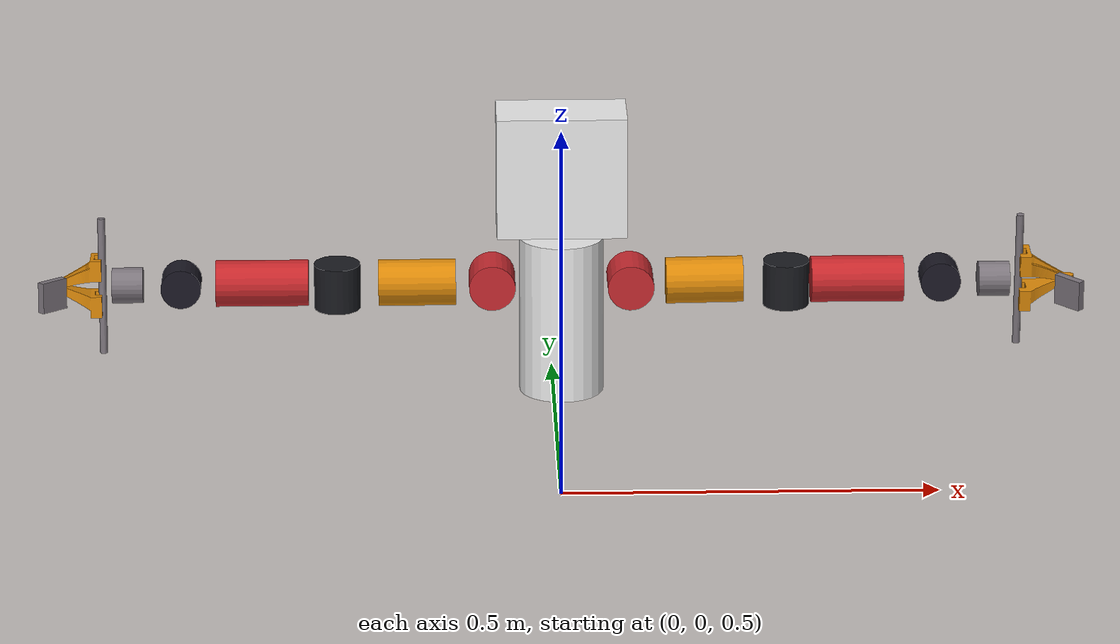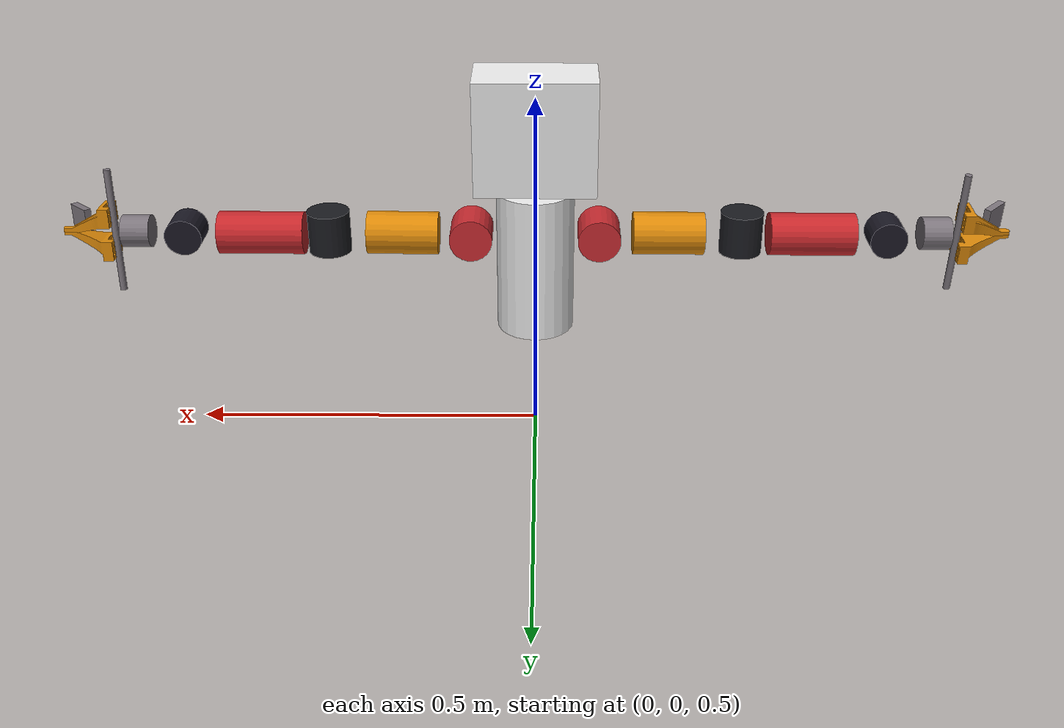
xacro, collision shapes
<?xml version="1.0"?>
<robot xmlns:xacro="http://www.ros.org/wiki/xacro" name="lite_000_asm">
    <xacro:arg name="initial_positions_file" default="initial_positions.yaml" />

    <!-- Import lite_000_asm urdf file -->
    <xacro:include filename="$(find lite_moveit2)/urdf/lite.urdf" />

    <!-- Import control_xacro -->
    <xacro:include filename="lite_000_asm.ros2_control.xacro" />

    <xacro:lite_000_asm_ros2_control name="FakeSystem" initial_positions_file="$(arg initial_positions_file)"/>

</robot>

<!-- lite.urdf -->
<!-- |    This document was autogenerated by xacro from /home/stvli/Desktop/where_is_my_key/lite_ros2/lite_urdf/urdf/lite.urdf.xacro | -->
<!-- |    EDITING THIS FILE BY HAND IS NOT RECOMMENDED                                 | -->
<robot name="lite_000_asm">
  <link name="right_wrist_yaw_motor_link">
    <inertial>
      <origin rpy="0 0 0" xyz="-0.0001343 -0.0214752 -0.0000049"/>
      <mass value="0.0000254"/>
      <inertia ixx="0" ixy="0" ixz="0" iyy="0" iyz="0" izz="0"/>
    </inertial>
    <visual>
      <origin rpy="0 0 0" xyz="0 0 0"/>
      <geometry>
        <mesh filename="package://lite_moveit2/meshes/right_wrist_yaw_motor_link_visual.stl"/>
      </geometry>
      <material name="lite_wrist_yaw_motor">
        <color rgba="0.76470588 0.15294118 0.16862745 1.00000000"/>
      </material>
    </visual>
    <collision>
      <origin rpy="1.570796327 -3.673205103e-06 -7.3e-06" xyz="-1.221561089e-07 -0.033256 0"/>
      <geometry>
        <cylinder length="0.12" radius="0.03"/>
      </geometry>
    </collision>
  </link>
  <link name="left_wrist_yaw_motor_link">
    <inertial>
      <origin rpy="0 0 0" xyz="-0.0001343 -0.0214752 -0.0000049"/>
      <mass value="0.0000254"/>
      <inertia ixx="0" ixy="0" ixz="0" iyy="0" iyz="0" izz="0"/>
    </inertial>
    <visual>
      <origin rpy="0 0 0" xyz="0 0 0"/>
      <geometry>
        <mesh filename="package://lite_moveit2/meshes/left_wrist_yaw_motor_link_visual.stl"/>
      </geometry>
      <material name="lite_wrist_yaw_motor">
        <color rgba="0.76470588 0.15294118 0.16862745 1.00000000"/>
      </material>
    </visual>
    <collision>
      <origin rpy="2.509931214 -1.570791833 2.202461439" xyz="1.093138492e-07 -0.0297598 0"/>
      <geometry>
        <cylinder length="0.12" radius="0.03"/>
      </geometry>
    </collision>
  </link>
  <link name="left_elbow_pitch_link">
    <inertial>
      <origin rpy="0 0 0.86488" xyz="-0.0146726 -0.0332905 -0.013722"/>
      <mass value="0.0000964"/>
      <inertia ixx="0.0000001" ixy="0" ixz="0" iyy="0.0000001" iyz="0" izz="0.0000001"/>
    </inertial>
    <visual>
      <origin rpy="0 0 0" xyz="0 0 0"/>
      <geometry>
        <mesh filename="package://lite_moveit2/meshes/left_elbow_pitch_link_visual.stl"/>
      </geometry>
      <material name="lite_elbow_pitch">
        <color rgba="0.94117647 0.96078431 0.97647059 1.00000000"/>
      </material>
    </visual>
  </link>
  <link name="left_shoulder_pitch_link">
    <inertial>
      <origin rpy="-0.299414 0 0" xyz="-0.017422 0.0100505 0.0023346"/>
      <mass value="0.0000497"/>
      <inertia ixx="0" ixy="0" ixz="0" iyy="0" iyz="0" izz="0"/>
    </inertial>
    <visual>
      <origin rpy="0 0 0" xyz="0 0 0"/>
      <geometry>
        <mesh filename="package://lite_moveit2/meshes/left_shoulder_pitch_link_visual.stl"/>
      </geometry>
      <material name="lite_shoulder_pitch">
        <color rgba="0.77254902 0.16470588 0.18823529 1.00000000"/>
      </material>
    </visual>
    <collision>
      <origin rpy="1.25 0 0" xyz="-0.0408173 -0.0001475 -0.0003191"/>
      <geometry>
        <cylinder length="0.06" radius="0.03"/>
      </geometry>
    </collision>
  </link>
  <link name="left_shoulder_roll_link">
    <inertial>
      <origin rpy="0 0.314302 0" xyz="0.0402802 -0.01516 -0.0119022"/>
      <mass value="0.0000948"/>
      <inertia ixx="0" ixy="0" ixz="0" iyy="0.0000001" iyz="0" izz="0.0000001"/>
    </inertial>
    <visual>
      <origin rpy="0 0 0" xyz="0 0 0"/>
      <geometry>
        <mesh filename="package://lite_moveit2/meshes/left_shoulder_roll_link_visual.stl"/>
      </geometry>
      <material name="lite_shoulder_roll">
        <color rgba="0.84705882 0.52549020 0.03137255 1.00000000"/>
      </material>
    </visual>
    <collision>
      <origin rpy="-3.1415926 1.2415927 -3.1415926" xyz="0.0911512 -0.0269397 -0.0299579"/>
      <geometry>
        <cylinder length="0.1" radius="0.03"/>
      </geometry>
    </collision>
  </link>
  <link name="left_shoulder_yaw_link">
    <inertial>
      <origin rpy="-0.43982 0 0" xyz="-0.0338829 0.0029572 0.0055402"/>
      <mass value="0.0001271"/>
      <inertia ixx="0.0000001" ixy="0" ixz="0" iyy="0.0000001" iyz="0" izz="0.0000001"/>
    </inertial>
    <visual>
      <origin rpy="0 0 0" xyz="0 0 0"/>
      <geometry>
        <mesh filename="package://lite_moveit2/meshes/left_shoulder_yaw_link_visual.stl"/>
      </geometry>
      <material name="lite_shoulder_yaw">
        <color rgba="0.10196078 0.10588235 0.12549020 1.00000000"/>
      </material>
    </visual>
    <collision>
      <origin rpy="-0.455 0 0" xyz="-0.0810676 0.0076647 -0.0043353"/>
      <geometry>
        <cylinder length="0.06" radius="0.03"/>
      </geometry>
    </collision>
  </link>
  <link name="left_wrist_roll_link">
    <inertial>
      <origin rpy="0 -0.414095 0" xyz="0.0068741 0.026505 -0.0140495"/>
      <mass value="0.0000165"/>
      <inertia ixx="0" ixy="0" ixz="0" iyy="0" iyz="0" izz="0"/>
    </inertial>
    <visual>
      <origin rpy="0 0 0" xyz="0 0 0"/>
      <geometry>
        <mesh filename="package://lite_moveit2/meshes/left_wrist_roll_link_visual.stl"/>
      </geometry>
      <material name="lite_wrist_roll">
        <color rgba="0.10196078 0.09411765 0.13725490 1.00000000"/>
      </material>
    </visual>
    <collision>
      <origin rpy="0 -0.414095 0" xyz="-0.0006294789133 0.0249693 -0.0004228140225"/>
      <geometry>
        <cylinder length="0.045" radius="0.026"/>
      </geometry>
    </collision>
  </link>
  <link name="left_gripper_finger_left_link">
    <inertial>
      <origin rpy="0 0 0" xyz="-0.01125 -0.0034914 0.0017499"/>
      <mass value="0.0000019"/>
      <inertia ixx="0" ixy="0" ixz="0" iyy="0" iyz="0" izz="0"/>
    </inertial>
    <visual>
      <origin rpy="0 0 0" xyz="0 0 0"/>
      <geometry>
        <mesh filename="package://lite_moveit2/meshes/left_gripper_finger_left_link_visual.stl"/>
      </geometry>
      <material name="lite_gripper_finger_black">
        <color rgba="0.84705882 0.52549020 0.03137255 1.00000000"/>
      </material>
    </visual>
    <collision>
      <origin rpy="0 0 0" xyz="0 0 0"/>
      <geometry>
        <mesh filename="package://lite_moveit2/meshes/left_gripper_finger_left_link_collision.stl"/>
      </geometry>
    </collision>
  </link>
  <link name="right_gripper_finger_left_link">
    <inertial>
      <origin rpy="0 0 0" xyz="-0.01125 -0.0034914 0.0017499"/>
      <mass value="0.0000019"/>
      <inertia ixx="0" ixy="0" ixz="0" iyy="0" iyz="0" izz="0"/>
    </inertial>
    <visual>
      <origin rpy="0 0 0" xyz="0 0 0"/>
      <geometry>
        <mesh filename="package://lite_moveit2/meshes/right_gripper_finger_left_link_visual.stl"/>
      </geometry>
      <material name="lite_gripper_finger_black">
        <color rgba="0.84705882 0.52549020 0.03137255 1.00000000"/>
      </material>
    </visual>
    <collision>
      <origin rpy="0 0 0" xyz="0 0 0"/>
      <geometry>
        <mesh filename="package://lite_moveit2/meshes/right_gripper_finger_left_link_collision.stl"/>
      </geometry>
    </collision>
  </link>
  <link name="left_gripper_finger_right_link">
    <inertial>
      <origin rpy="0 0 0" xyz="0.01125 -0.0034914 0.0017499"/>
      <mass value="0.0000019"/>
      <inertia ixx="0" ixy="0" ixz="0" iyy="0" iyz="0" izz="0"/>
    </inertial>
    <visual>
      <origin rpy="0 0 0" xyz="0 0 0"/>
      <geometry>
        <mesh filename="package://lite_moveit2/meshes/left_gripper_finger_right_link_visual.stl"/>
      </geometry>
      <material name="lite_gripper_finger_black">
        <color rgba="0.84705882 0.52549020 0.03137255 1.00000000"/>
      </material>
    </visual>
    <collision>
      <origin rpy="0 0 0" xyz="0 0 0"/>
      <geometry>
        <mesh filename="package://lite_moveit2/meshes/left_gripper_finger_right_link_collision.stl"/>
      </geometry>
    </collision>
  </link>
  <link name="right_gripper_finger_right_link">
    <inertial>
      <origin rpy="0 0 0" xyz="0.01125 -0.0034914 0.0017499"/>
      <mass value="0.0000019"/>
      <inertia ixx="0" ixy="0" ixz="0" iyy="0" iyz="0" izz="0"/>
    </inertial>
    <visual>
      <origin rpy="0 0 0" xyz="0 0 0"/>
      <geometry>
        <mesh filename="package://lite_moveit2/meshes/right_gripper_finger_right_link_visual.stl"/>
      </geometry>
      <material name="lite_gripper_finger_black">
        <color rgba="0.84705882 0.52549020 0.03137255 1.00000000"/>
      </material>
    </visual>
    <collision>
      <origin rpy="0 0 0" xyz="0 0 0"/>
      <geometry>
        <mesh filename="package://lite_moveit2/meshes/right_gripper_finger_right_link_collision.stl"/>
      </geometry>
    </collision>
  </link>
  <link name="right_elbow_pitch_link">
    <inertial>
      <origin rpy="0 0 -0.0471294" xyz="0.0340985 -0.0119819 -0.0129345"/>
      <mass value="0.0000971"/>
      <inertia ixx="0.0000001" ixy="0" ixz="0" iyy="0.0000001" iyz="0" izz="0.0000001"/>
    </inertial>
    <visual>
      <origin rpy="0 0 0" xyz="0 0 0"/>
      <geometry>
        <mesh filename="package://lite_moveit2/meshes/right_elbow_pitch_link_visual.stl"/>
      </geometry>
      <material name="lite_elbow_pitch">
        <color rgba="0.94117647 0.96078431 0.97647059 1.00000000"/>
      </material>
    </visual>
  </link>
  <link name="right_shoulder_pitch_link">
    <inertial>
      <origin rpy="0.25946 0 0" xyz="0.017422 0.0072834 0.0073085"/>
      <mass value="0.0000497"/>
      <inertia ixx="0" ixy="0" ixz="0" iyy="0" iyz="0" izz="0"/>
    </inertial>
    <visual>
      <origin rpy="0 0 0" xyz="0 0 0"/>
      <geometry>
        <mesh filename="package://lite_moveit2/meshes/right_shoulder_pitch_link_visual.stl"/>
      </geometry>
      <material name="lite_shoulder_pitch">
        <color rgba="0.77254902 0.16470588 0.18823529 1.00000000"/>
      </material>
    </visual>
    <collision>
      <origin rpy="-1.32 0 0" xyz="0.0408556 -0.0013229 -0.0002332"/>
      <geometry>
        <cylinder length="0.06" radius="0.03"/>
      </geometry>
    </collision>
  </link>
  <link name="right_shoulder_roll_link">
    <inertial>
      <origin rpy="0 -0.582412 0" xyz="0.0354428 -0.0143616 0.0220107"/>
      <mass value="0.0000954"/>
      <inertia ixx="0.0000001" ixy="0" ixz="0" iyy="0.0000001" iyz="0" izz="0.0000001"/>
    </inertial>
    <visual>
      <origin rpy="0 0 0" xyz="0 0 0"/>
      <geometry>
        <mesh filename="package://lite_moveit2/meshes/right_shoulder_roll_link_visual.stl"/>
      </geometry>
      <material name="lite_shoulder_roll">
        <color rgba="0.84705882 0.52549020 0.03137255 1.00000000"/>
      </material>
    </visual>
    <collision>
      <origin rpy="0 0.99 0" xyz="0.0810147 -0.0248544 0.0537949"/>
      <geometry>
        <cylinder length="0.1" radius="0.03"/>
      </geometry>
    </collision>
  </link>
  <link name="right_shoulder_yaw_link">
    <inertial>
      <origin rpy="-1.55277 0 0" xyz="0.0338839 0.0062782 -0.0002046"/>
      <mass value="0.0001271"/>
      <inertia ixx="0.0000001" ixy="0" ixz="0" iyy="0.0000001" iyz="0" izz="0.0000001"/>
    </inertial>
    <visual>
      <origin rpy="0 0 0" xyz="0 0 0"/>
      <geometry>
        <mesh filename="package://lite_moveit2/meshes/right_shoulder_yaw_link_visual.stl"/>
      </geometry>
      <material name="lite_shoulder_yaw">
        <color rgba="0.10196078 0.10588235 0.12549020 1.00000000"/>
      </material>
    </visual>
    <collision>
      <origin rpy="1.5707963 0 0" xyz="0.0799504 0 -0.0092276"/>
      <geometry>
        <cylinder length="0.06" radius="0.03"/>
      </geometry>
    </collision>
  </link>
  <link name="left_wrist_pitch_link">
    <inertial>
      <origin rpy="0 0 -0.725768" xyz="0.023173 -0.0205664 -0.0112555"/>
      <mass value="0.0000274"/>
      <inertia ixx="0" ixy="0" ixz="0" iyy="0" iyz="0" izz="0"/>
    </inertial>
    <visual>
      <origin rpy="0 0 0" xyz="0 0 0"/>
      <geometry>
        <mesh filename="package://lite_moveit2/meshes/left_wrist_pitch_link_visual.stl"/>
      </geometry>
      <material name="lite_wrist_pitch">
        <color rgba="0.47843137 0.45098039 0.47843137 1.00000000"/>
      </material>
    </visual>
    <collision>
      <origin rpy="-0.785393176 -0.06981242277 0.845026119" xyz="0.1208810353 -0.1117893004 0.02800887784"/>
      <geometry>
        <box size="0.04 0.04 0.01"/>
      </geometry>
    </collision>
    <collision>
      <origin rpy="1.500983127 -3.666126471e-06 2.415824556" xyz="0.07690913134 -0.06851299558 -0.01754819854"/>
      <geometry>
        <cylinder length="0.18" radius="0.005"/>
      </geometry>
    </collision>
    <collision>
      <origin rpy="1.5708 -0.0698132 0.845028" xyz="0.05264540883 -0.04689062756 -0.01853816177"/>
      <geometry>
        <cylinder length="0.04" radius="0.023"/>
      </geometry>
    </collision>
  </link>
  <link name="right_wrist_pitch_link">
    <inertial>
      <origin rpy="0 0 -0.393547" xyz="0.0286135 -0.0118841 -0.0112555"/>
      <mass value="0.0000274"/>
      <inertia ixx="0" ixy="0" ixz="0" iyy="0" iyz="0" izz="0"/>
    </inertial>
    <visual>
      <origin rpy="0 0 0" xyz="0 0 0"/>
      <geometry>
        <mesh filename="package://lite_moveit2/meshes/right_wrist_pitch_link_visual.stl"/>
      </geometry>
      <material name="lite_wrist_pitch">
        <color rgba="0.47843137 0.45098039 0.47843137 1.00000000"/>
      </material>
    </visual>
    <collision>
      <origin rpy="-0.7853878688 -0.06981242277 1.177248119" xyz="0.1513366084 -0.0663160654 0.02735937002"/>
      <geometry>
        <box size="0.04 0.04 0.01"/>
      </geometry>
    </collision>
    <collision>
      <origin rpy="1.500983127 -3.666126471e-06 2.748046556" xyz="0.09509964415 -0.0395609147 -0.01761512239"/>
      <geometry>
        <cylinder length="0.18" radius="0.005"/>
      </geometry>
    </collision>
    <collision>
      <origin rpy="1.5708 -0.0698132 1.17725" xyz="0.0651106442 -0.02703434655 -0.01860488611"/>
      <geometry>
        <cylinder length="0.04" radius="0.023"/>
      </geometry>
    </collision>
  </link>
  <link name="right_wrist_roll_motor_link">
    <inertial>
      <origin rpy="0 0.0743208 0" xyz="0.0006071 0.0259549 0.0117595"/>
      <mass value="0.0000121"/>
      <inertia ixx="0" ixy="0" ixz="0" iyy="0" iyz="0" izz="0"/>
    </inertial>
    <visual>
      <origin rpy="0 0 0" xyz="0 0 0"/>
      <geometry>
        <mesh filename="package://lite_moveit2/meshes/right_wrist_roll_motor_link_visual.stl"/>
      </geometry>
      <material name="lite_wrist_roll">
        <color rgba="0.10196078 0.09411765 0.13725490 1.00000000"/>
      </material>
    </visual>
    <collision>
      <origin rpy="0 0.0743208 0" xyz="0.0012916 0.0269225 -0.000746"/>
      <geometry>
        <cylinder length="0.045002" radius="0.026"/>
      </geometry>
    </collision>
  </link>
  <link name="world_root">
    <inertial>
      <origin rpy="0 0 0" xyz="0 0 0"/>
      <mass value="1e-9"/>
      <inertia ixx="1e-12" ixy="0" ixz="0" iyy="1e-12" iyz="0" izz="1e-12"/>
    </inertial>
    <visual>
      <origin rpy="0 0 0" xyz="0 0 0"/>
      <geometry>
        <mesh filename="package://lite_moveit2/meshes/world_root_visual.stl"/>
      </geometry>
      <material name="lite_world_root">
        <color rgba="0.92156863 0.92156863 0.92156863 1.00000000"/>
      </material>
    </visual>
    <collision>
      <origin rpy="7.346419954e-06 0 3.141592654" xyz="-1.937120689e-06 -0.01429721433 0.759186505"/>
      <geometry>
        <cylinder length="0.209443" radius="0.054721"/>
      </geometry>
    </collision>
    <collision>
      <origin rpy="0 0 0" xyz="-0.0000037 -0.006508 0.952301"/>
      <geometry>
        <box size="0.168 0.09 0.16"/>
      </geometry>
    </collision>
  </link>
  <link name="head_camera_link">
    <inertial>
      <origin rpy="0 0 0" xyz="0 0 0"/>
      <mass value="1e-9"/>
      <inertia ixx="1e-12" ixy="0" ixz="0" iyy="1e-12" iyz="0" izz="1e-12"/>
    </inertial>
  </link>
  <link name="left_wrist_camera_link">
    <inertial>
      <origin rpy="0 0 0" xyz="0 0 0"/>
      <mass value="1e-9"/>
      <inertia ixx="1e-12" ixy="0" ixz="0" iyy="1e-12" iyz="0" izz="1e-12"/>
    </inertial>
  </link>
  <link name="right_wrist_camera_link">
    <inertial>
      <origin rpy="0 0 0" xyz="0 0 0"/>
      <mass value="1e-9"/>
      <inertia ixx="1e-12" ixy="0" ixz="0" iyy="1e-12" iyz="0" izz="1e-12"/>
    </inertial>
  </link>
  <link name="left_gripper_tip_middle_link">
    <inertial>
      <origin rpy="0 0 0" xyz="0 0 0"/>
      <mass value="1e-9"/>
      <inertia ixx="1e-12" ixy="0" ixz="0" iyy="1e-12" iyz="0" izz="1e-12"/>
    </inertial>
  </link>
  <link name="right_gripper_tip_middle_link">
    <inertial>
      <origin rpy="0 0 0" xyz="0 0 0"/>
      <mass value="1e-9"/>
      <inertia ixx="1e-12" ixy="0" ixz="0" iyy="1e-12" iyz="0" izz="1e-12"/>
    </inertial>
  </link>
  <joint name="left_shoulder_pitch" type="revolute">
    <parent link="world_root"/>
    <child link="left_shoulder_pitch_link"/>
    <origin rpy="0.2994274351 0.1745330072 -3.141587582" xyz="0.04962222198 -0.007996932602 0.7928799915"/>
    <axis xyz="-1 0 0"/>
    <limit effort="1" lower="-3.1415916" upper="0.7853984" velocity="1"/>
    <hardware>
      <motorType>None</motorType>
      <motorDirection>-1</motorDirection>
      <armature>0</armature>
    </hardware>
  </joint>
  <joint name="left_shoulder_roll" type="revolute">
    <parent link="left_shoulder_pitch_link"/>
    <child link="left_shoulder_roll_link"/>
    <origin rpy="-2.8052323666 0.4653133292 -2.9859660904" xyz="-0.04100000351 0.02565540881 -0.007919662552"/>
    <axis xyz="0 1 0"/>
    <limit effort="1" lower="-1.57079475" upper="1.91986025" velocity="1"/>
    <hardware>
      <motorType>None</motorType>
      <motorDirection>-1</motorDirection>
      <armature>0</armature>
    </hardware>
  </joint>
  <joint name="left_shoulder_yaw" type="revolute">
    <parent link="left_shoulder_roll_link"/>
    <child link="left_shoulder_yaw_link"/>
    <origin rpy="-2.701771727 -0.3143027 -3.14158898" xyz="0.1148822482 -0.02709980309 -0.03734592284"/>
    <axis xyz="1 0 0"/>
    <limit effort="1" lower="-1.5708" upper="1.5708" velocity="1"/>
    <hardware>
      <motorType>None</motorType>
      <motorDirection>1</motorDirection>
      <armature>0</armature>
    </hardware>
  </joint>
  <joint name="left_elbow_pitch" type="revolute">
    <parent link="left_shoulder_yaw_link"/>
    <child link="left_elbow_pitch_link"/>
    <origin rpy="-0.2962759628 -0.3299797087 -0.8151948384" xyz="-0.0800000025 0.02048037438 0.02003692937"/>
    <axis xyz="0 0 1"/>
    <limit effort="1" lower="-2.356198" upper="0" velocity="1"/>
    <hardware>
      <motorType>None</motorType>
      <motorDirection>-1</motorDirection>
      <armature>0</armature>
    </hardware>
  </joint>
  <joint name="left_wrist_yaw" type="revolute">
    <parent link="left_elbow_pitch_link"/>
    <child link="left_wrist_yaw_motor_link"/>
    <origin rpy="2.1761163 1.5707931 1.4702039" xyz="-0.0339087 -0.0551924 -0.0271"/>
    <axis xyz="0 1 0"/>
    <limit effort="1" lower="-1.5707945" upper="1.5707945" velocity="1"/>
    <hardware>
      <motorType>None</motorType>
      <motorDirection>1</motorDirection>
      <armature>0</armature>
    </hardware>
  </joint>
  <joint name="left_wrist_roll" type="revolute">
    <parent link="left_wrist_yaw_motor_link"/>
    <child link="left_wrist_roll_link"/>
    <origin rpy="3.141589755 -0.4140965 1.570801166" xyz="-0.02599949677 -0.1370000955 -6.899333461e-08"/>
    <axis xyz="0 -1 0"/>
    <limit effort="1" lower="-0.6981335" upper="0.6981335" velocity="1"/>
    <hardware>
      <motorType>None</motorType>
      <motorDirection>-1</motorDirection>
      <armature>0</armature>
    </hardware>
  </joint>
  <joint name="left_wrist_pitch" type="revolute">
    <parent link="left_wrist_roll_link"/>
    <child link="left_wrist_pitch_link"/>
    <origin rpy="0.2838290718 0.30570169 -2.371804821" xyz="-0.009053135665 0.026 0.02059831873"/>
    <axis xyz="0 0 1"/>
    <limit effort="1" lower="-0.7854" upper="0.7854" velocity="1"/>
    <hardware>
      <motorType>None</motorType>
      <motorDirection>-1</motorDirection>
      <armature>0</armature>
    </hardware>
  </joint>
  <joint name="right_shoulder_pitch" type="revolute">
    <parent link="world_root"/>
    <child link="right_shoulder_pitch_link"/>
    <origin rpy="-0.2594571717 -0.1745330458 3.141587621" xyz="-0.04962609453 -0.007796944815 0.7928799997"/>
    <axis xyz="-1 0 0"/>
    <limit effort="1" lower="-3.1415916" upper="0.7853984" velocity="1"/>
    <hardware>
      <motorType>None</motorType>
      <motorDirection>1</motorDirection>
      <armature>0</armature>
    </hardware>
  </joint>
  <joint name="right_shoulder_roll" type="revolute">
    <parent link="right_shoulder_pitch_link"/>
    <child link="right_shoulder_roll_link"/>
    <origin rpy="0.3501154544 0.7257811284 0.2377861735" xyz="0.04099980899 0.02527477392 0.006709218258"/>
    <axis xyz="0 1 0"/>
    <limit effort="1" lower="-1.91986025" upper="1.57079475" velocity="1"/>
    <hardware>
      <motorType>None</motorType>
      <motorDirection>-1</motorDirection>
      <armature>0</armature>
    </hardware>
  </joint>
  <joint name="right_shoulder_yaw" type="revolute">
    <parent link="right_shoulder_roll_link"/>
    <child link="right_shoulder_yaw_link"/>
    <origin rpy="1.55277638 -0.5824100464 3.673220854e-06" xyz="0.1008846481 -0.02639984048 0.06644494687"/>
    <axis xyz="-1 0 0"/>
    <limit effort="1" lower="-1.5707972" upper="1.5707972" velocity="1"/>
    <hardware>
      <motorType>None</motorType>
      <motorDirection>1</motorDirection>
      <armature>0</armature>
    </hardware>
  </joint>
  <joint name="right_elbow_pitch" type="revolute">
    <parent link="right_shoulder_yaw_link"/>
    <child link="right_elbow_pitch_link"/>
    <origin rpy="-1.552756021 0.04712209601 0.0008482378368" xyz="0.08000000295 0.0270258376 -0.009514478403"/>
    <axis xyz="0 0 1"/>
    <limit effort="1" lower="0" upper="2.356199" velocity="1"/>
    <hardware>
      <motorType>None</motorType>
      <motorDirection>-1</motorDirection>
      <armature>0</armature>
    </hardware>
  </joint>
  <joint name="right_wrist_yaw" type="revolute">
    <parent link="right_elbow_pitch_link"/>
    <child link="right_wrist_yaw_motor_link"/>
    <origin rpy="3.1415913 5.5e-06 -1.6179277" xyz="0.0634578 -0.0130041 -0.0264"/>
    <axis xyz="0 1 0"/>
    <limit effort="1" lower="-1.5707955" upper="1.5707955" velocity="1"/>
    <hardware>
      <motorType>None</motorType>
      <motorDirection>1</motorDirection>
      <armature>0</armature>
    </hardware>
  </joint>
  <joint name="right_wrist_roll" type="revolute">
    <parent link="right_wrist_yaw_motor_link"/>
    <child link="right_wrist_roll_motor_link"/>
    <origin rpy="1.57079999 2.727450251e-07 -1.645121" xyz="-4.077257665e-07 -0.137 -0.026"/>
    <axis xyz="0 1 0"/>
    <limit effort="1" lower="-0.698132" upper="0.698132" velocity="1"/>
    <hardware>
      <motorType>None</motorType>
      <motorDirection>1</motorDirection>
      <armature>0</armature>
    </hardware>
  </joint>
  <joint name="right_wrist_pitch" type="revolute">
    <parent link="right_wrist_roll_motor_link"/>
    <child link="right_wrist_pitch_link"/>
    <origin rpy="0.02854527272 0.06862962747 0.3945277653" xyz="0.0016707 0.026 0.0224379"/>
    <axis xyz="0 0 1"/>
    <limit effort="1" lower="-0.785399" upper="0.785399" velocity="1"/>
    <hardware>
      <motorType>None</motorType>
      <motorDirection>-1</motorDirection>
      <armature>0</armature>
    </hardware>
  </joint>
  <joint name="left_gripper" type="prismatic">
    <parent link="left_wrist_pitch_link"/>
    <child link="left_gripper_finger_left_link"/>
    <origin rpy="1.5708 -0.0698132 0.845028" xyz="0.1040961904 -0.04585909073 -0.01258790935"/>
    <axis xyz="1 0 0"/>
    <limit effort="1" lower="0" upper="0.047" velocity="1"/>
    <hardware>
      <motorType>None</motorType>
      <motorDirection>1</motorDirection>
      <armature>0</armature>
    </hardware>
  </joint>
  <joint name="right_gripper" type="prismatic">
    <parent link="right_wrist_pitch_link"/>
    <child link="right_gripper_finger_left_link"/>
    <origin rpy="1.5708 -0.0698132 1.17725" xyz="0.113421574 -0.009254971529 -0.01265282701"/>
    <axis xyz="1 0 0"/>
    <limit effort="1" lower="0" upper="0.047" velocity="1"/>
    <hardware>
      <motorType>None</motorType>
      <motorDirection>1</motorDirection>
      <armature>0</armature>
    </hardware>
  </joint>
  <joint name="left_gripper_passive_joint" type="prismatic">
    <parent link="left_wrist_pitch_link"/>
    <child link="left_gripper_finger_right_link"/>
    <origin rpy="1.5708 -0.0698132 0.845028" xyz="0.05741859357 -0.09846390861 -0.01750574286"/>
    <axis xyz="-1 0 0"/>
    <limit effort="1" lower="0" upper="0.047" velocity="1"/>
    <hardware>
      <motorType>None</motorType>
      <motorDirection>1</motorDirection>
      <armature>0</armature>
    </hardware>
    <mimic joint="left_gripper" multiplier="1" offset="0"/>
  </joint>
  <joint name="right_gripper_passive_joint" type="prismatic">
    <parent link="right_wrist_pitch_link"/>
    <child link="right_gripper_finger_right_link"/>
    <origin rpy="1.5708 -0.0698132 1.17725" xyz="0.08644316447 -0.07423085268 -0.0175724672"/>
    <axis xyz="-1 0 0"/>
    <limit effort="1" lower="0" upper="0.047" velocity="1"/>
    <hardware>
      <motorType>None</motorType>
      <motorDirection>1</motorDirection>
      <armature>0</armature>
    </hardware>
    <mimic joint="right_gripper" multiplier="1" offset="0"/>
  </joint>
  <joint name="head_camera_joint" type="fixed">
    <parent link="world_root"/>
    <child link="head_camera_link"/>
    <origin rpy="-2.3561871804 0 3.1415926264" xyz="-1.937121605e-06 -0.1082753717 1.010000795"/>
  </joint>
  <joint name="left_wrist_camera_joint" type="fixed">
    <parent link="left_wrist_pitch_link"/>
    <child link="left_wrist_camera_link"/>
    <origin rpy="-2.3561994776 0.0698124228 -2.2965665346" xyz="0.1237537251 -0.1140010331 0.02440096001"/>
  </joint>
  <joint name="right_wrist_camera_joint" type="fixed">
    <parent link="right_wrist_pitch_link"/>
    <child link="right_wrist_camera_link"/>
    <origin rpy="-2.3562047848 0.0698124228 -1.9643445346" xyz="0.1542184407 -0.06728357609 0.02433415705"/>
  </joint>
  <joint name="left_gripper_tip_middle_joint" type="fixed">
    <parent link="left_wrist_pitch_link"/>
    <child link="left_gripper_tip_middle_link"/>
    <origin rpy="1.5708 -0.0698132 0.845028" xyz="0.1260019346 -0.1111205665 -0.01849347726"/>
  </joint>
  <joint name="right_gripper_tip_middle_joint" type="fixed">
    <parent link="right_wrist_pitch_link"/>
    <child link="right_gripper_tip_middle_link"/>
    <origin rpy="1.5708 -0.0698132 1.17725" xyz="0.1551621984 -0.06441037825 -0.01860434352"/>
  </joint>
</robot>
